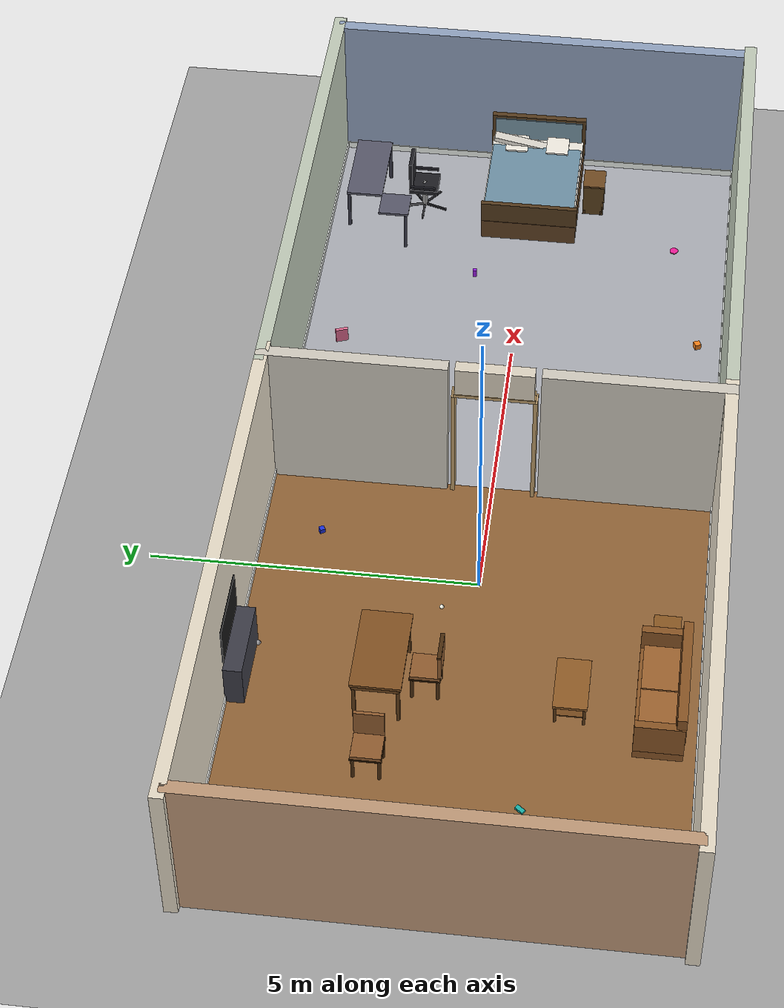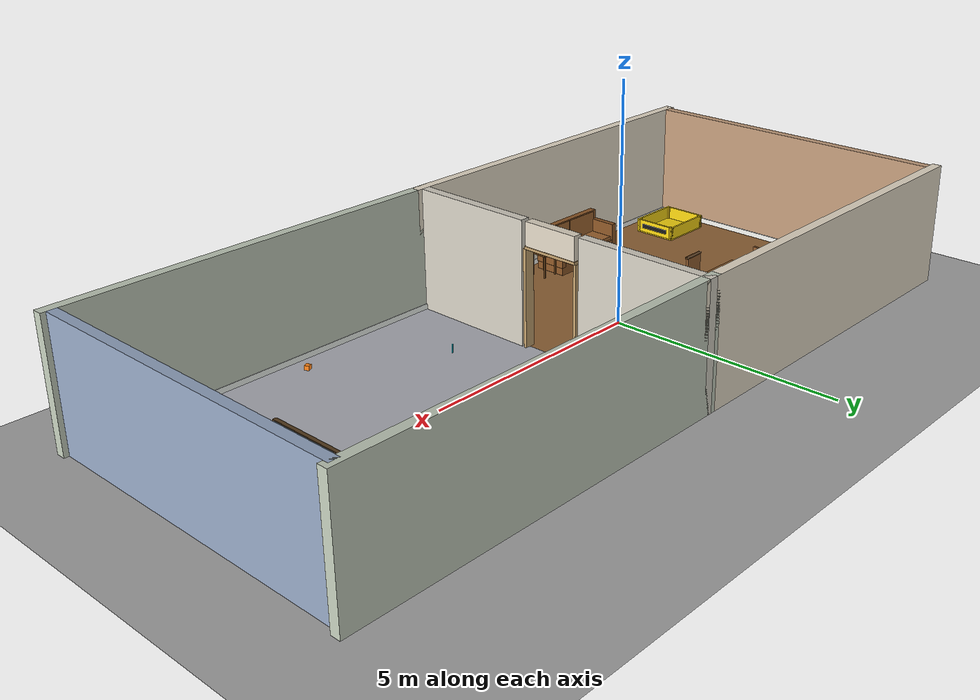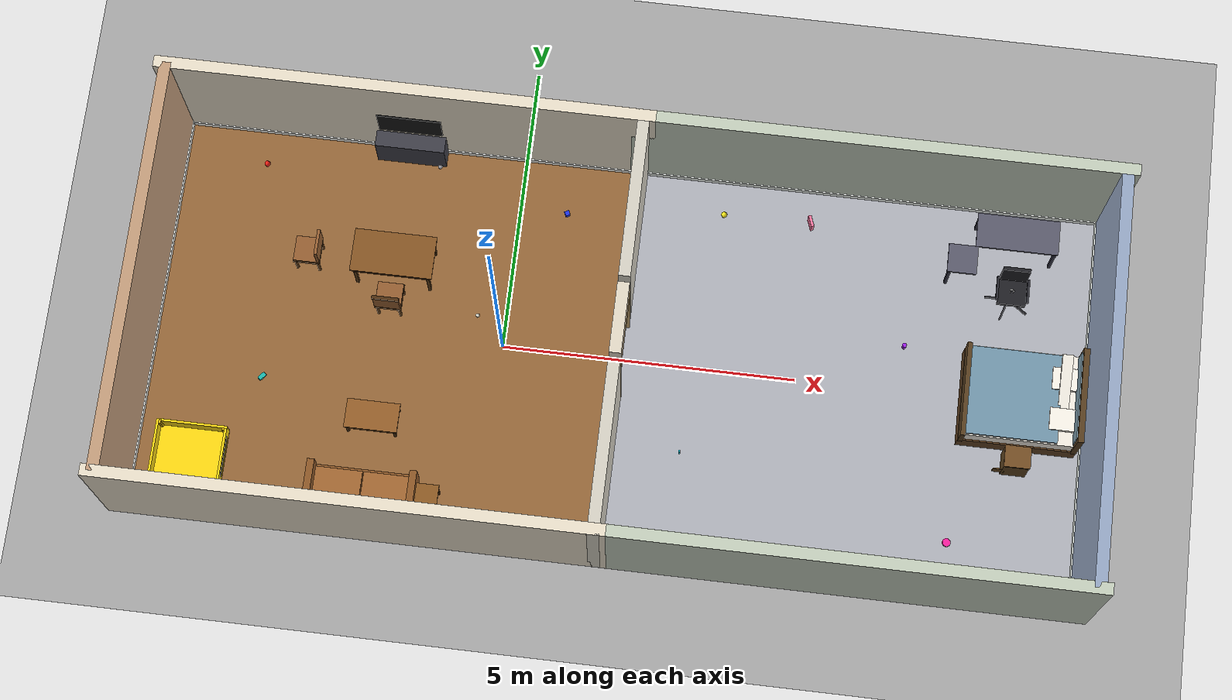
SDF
<?xml version="1.0" ?>
<sdf version="1.8">
  <world name="home_world">

    <!-- ==================== PHYSICS ==================== -->
    <gravity>0 0 -9.81</gravity>
    <magnetic_field>6e-06 2.3e-05 -4.2e-05</magnetic_field>

    <physics name="default_physics" type="ode">
      <max_step_size>0.001</max_step_size>
      <real_time_factor>1.0</real_time_factor>
      <real_time_update_rate>1000</real_time_update_rate>
      <ode>
        <solver>
          <type>quick</type>
          <iters>50</iters>
          <sor>1.3</sor>
          <use_dynamic_moi_rescaling>true</use_dynamic_moi_rescaling>
        </solver>
        <constraints>
          <cfm>0</cfm>
          <erp>0.2</erp>
          <contact_max_correcting_vel>100</contact_max_correcting_vel>
          <contact_surface_layer>0.001</contact_surface_layer>
        </constraints>
      </ode>
    </physics>

    <!-- ==================== SCENE ==================== -->
    <scene>
      <ambient>0.35 0.35 0.35 1</ambient>
      <background>0.65 0.65 0.68 1</background>
      <shadows>true</shadows>
      <grid>false</grid>
      <origin_visual>false</origin_visual>
    </scene>

    <!-- ==================== LIGHTING ==================== -->
    <!-- Room 1 = WARM (amber/orange tones). Room 2 = COOL (blue/slate tones). -->

    <light type="directional" name="sun">
      <cast_shadows>true</cast_shadows>
      <pose>0 0 10 0 0 0</pose>
      <diffuse>0.85 0.82 0.75 1</diffuse>
      <specular>0.30 0.28 0.25 1</specular>
      <direction>-0.5 0.1 -0.9</direction>
    </light>

    <!-- WARM overhead — Room 1 -->
    <light type="point" name="room1_overhead">
      <pose>-2 0 2.4 0 0 0</pose>
      <diffuse>0.55 0.48 0.38 1</diffuse>
      <specular>0.18 0.15 0.10 1</specular>
      <attenuation><range>15</range><constant>0.4</constant><linear>0.02</linear><quadratic>0.002</quadratic></attenuation>
      <cast_shadows>false</cast_shadows>
    </light>

    <!-- WARM accent — beside sofa, Room 1 -->
    <light type="point" name="room1_accent">
      <pose>-0.95 -2.84 1.85 0 0 0</pose>
      <diffuse>0.65 0.50 0.30 1</diffuse>
      <specular>0.20 0.15 0.08 1</specular>
      <attenuation><range>6</range><constant>0.5</constant><linear>0.08</linear><quadratic>0.02</quadratic></attenuation>
      <cast_shadows>false</cast_shadows>
    </light>

    <!-- COOL overhead — Room 2 -->
    <light type="point" name="room2_overhead">
      <pose>6 0 2.4 0 0 0</pose>
      <diffuse>0.40 0.45 0.55 1</diffuse>
      <specular>0.12 0.14 0.18 1</specular>
      <attenuation><range>15</range><constant>0.4</constant><linear>0.02</linear><quadratic>0.002</quadratic></attenuation>
      <cast_shadows>false</cast_shadows>
    </light>

    <!-- COOL accent — beside bed, Room 2 -->
    <light type="point" name="room2_accent">
      <pose>9.55 1.55 1.85 0 0 0</pose>
      <diffuse>0.42 0.48 0.60 1</diffuse>
      <specular>0.14 0.16 0.20 1</specular>
      <attenuation><range>5</range><constant>0.5</constant><linear>0.10</linear><quadratic>0.025</quadratic></attenuation>
      <cast_shadows>false</cast_shadows>
    </light>

    <!-- WARM bedside — Room 2 (warm contrast against cool room tone) -->
    <light type="point" name="room2_bedside">
      <pose>8.8 -1.05 1.0 0 0 0</pose>
      <diffuse>0.68 0.52 0.30 1</diffuse>
      <specular>0.20 0.15 0.08 1</specular>
      <attenuation><range>4</range><constant>0.5</constant><linear>0.12</linear><quadratic>0.04</quadratic></attenuation>
      <cast_shadows>false</cast_shadows>
    </light>

    <!-- ==================== PLUGINS ==================== -->
    <plugin filename="libgazebo_ros_state.so" name="gazebo_ros_state"/>
    <plugin name="gazebo_link_attacher" filename="libgazebo_link_attacher.so"/>

    <!-- ==================== GROUND PLANE ==================== -->
    <model name="ground_plane">
      <static>true</static>
      <link name="link">
        <collision name="col">
          <geometry><plane><normal>0 0 1</normal><size>60 60</size></plane></geometry>
          <surface><friction><ode><mu>0.8</mu><mu2>0.8</mu2></ode></friction><contact><ode><min_depth>0.001</min_depth></ode></contact></surface>
        </collision>
        <visual name="vis">
          <geometry><plane><normal>0 0 1</normal><size>60 60</size></plane></geometry>
          <material><ambient>0.55 0.55 0.55 1</ambient><diffuse>0.65 0.65 0.65 1</diffuse><specular>0.08 0.08 0.08 1</specular></material>
        </visual>
      </link>
    </model>

    <!-- ==================== FLOOR TILES ==================== -->

    <!-- Room 1 — warm oak hardwood -->
    <model name="room1_floor">
      <static>true</static><pose>-2 0 0.001 0 0 0</pose>
      <link name="link">
        <visual name="vis">
          <geometry><box><size>8 7 0.002</size></box></geometry>
          <material><ambient>0.38 0.26 0.14 1</ambient><diffuse>0.58 0.40 0.22 1</diffuse><specular>0.22 0.16 0.09 1</specular><emissive>0.010 0.008 0.004 1</emissive></material>
        </visual>
      </link>
    </model>

    <!-- Room 2 — cool polished concrete -->
    <model name="room2_floor">
      <static>true</static><pose>6 0 0.001 0 0 0</pose>
      <link name="link">
        <visual name="vis">
          <geometry><box><size>8 7 0.002</size></box></geometry>
          <material><ambient>0.52 0.53 0.56 1</ambient><diffuse>0.68 0.69 0.72 1</diffuse><specular>0.30 0.30 0.32 1</specular><emissive>0.005 0.005 0.006 1</emissive></material>
        </visual>
      </link>
    </model>

    <!-- ==================== ROOM 1 WALLS ==================== -->
    <!-- Room 1: 8×7 m, centre (−2,0), x=[−6,2], y=[−3.5,3.5], h=2.6 m -->

    <model name="room1_wall_south">
      <static>true</static><pose>-2 -3.5 1.3 0 0 0</pose>
      <link name="link">
        <collision name="col"><geometry><box><size>8.4 0.2 2.6</size></box></geometry><surface><friction><ode><mu>0.6</mu><mu2>0.6</mu2></ode></friction></surface></collision>
        <visual name="vis"><geometry><box><size>8.4 0.2 2.6</size></box></geometry>
          <material><ambient>0.82 0.78 0.70 1</ambient><diffuse>0.91 0.87 0.79 1</diffuse><specular>0.04 0.04 0.03 1</specular><emissive>0.008 0.007 0.005 1</emissive></material></visual>
      </link>
    </model>

    <model name="room1_wall_north">
      <static>true</static><pose>-2 3.5 1.3 0 0 0</pose>
      <link name="link">
        <collision name="col"><geometry><box><size>8.4 0.2 2.6</size></box></geometry><surface><friction><ode><mu>0.6</mu><mu2>0.6</mu2></ode></friction></surface></collision>
        <visual name="vis"><geometry><box><size>8.4 0.2 2.6</size></box></geometry>
          <material><ambient>0.82 0.78 0.70 1</ambient><diffuse>0.91 0.87 0.79 1</diffuse><specular>0.04 0.04 0.03 1</specular><emissive>0.008 0.007 0.005 1</emissive></material></visual>
      </link>
    </model>

    <!-- West wall — terracotta accent -->
    <model name="room1_wall_west">
      <static>true</static><pose>-6 0 1.3 0 0 0</pose>
      <link name="link">
        <collision name="col"><geometry><box><size>0.2 7 2.6</size></box></geometry><surface><friction><ode><mu>0.6</mu><mu2>0.6</mu2></ode></friction></surface></collision>
        <visual name="vis"><geometry><box><size>0.2 7 2.6</size></box></geometry>
          <material><ambient>0.68 0.54 0.42 1</ambient><diffuse>0.76 0.61 0.48 1</diffuse><specular>0.04 0.03 0.02 1</specular><emissive>0.006 0.005 0.003 1</emissive></material></visual>
      </link>
    </model>

    <!-- Shared wall — doorway at y=0, 1.2 m wide -->
    <model name="shared_wall_south">
      <static>true</static><pose>2 -2.15 1.3 0 0 0</pose>
      <link name="link">
        <collision name="col"><geometry><box><size>0.2 2.9 2.6</size></box></geometry><surface><friction><ode><mu>0.6</mu><mu2>0.6</mu2></ode></friction></surface></collision>
        <visual name="vis"><geometry><box><size>0.2 2.9 2.6</size></box></geometry>
          <material><ambient>0.74 0.72 0.68 1</ambient><diffuse>0.83 0.81 0.76 1</diffuse><specular>0.05 0.05 0.04 1</specular></material></visual>
      </link>
    </model>

    <model name="shared_wall_north">
      <static>true</static><pose>2 2.15 1.3 0 0 0</pose>
      <link name="link">
        <collision name="col"><geometry><box><size>0.2 2.9 2.6</size></box></geometry><surface><friction><ode><mu>0.6</mu><mu2>0.6</mu2></ode></friction></surface></collision>
        <visual name="vis"><geometry><box><size>0.2 2.9 2.6</size></box></geometry>
          <material><ambient>0.74 0.72 0.68 1</ambient><diffuse>0.83 0.81 0.76 1</diffuse><specular>0.05 0.05 0.04 1</specular></material></visual>
      </link>
    </model>

    <model name="doorway_lintel">
      <static>true</static><pose>2 0 2.325 0 0 0</pose>
      <link name="link">
        <collision name="col"><geometry><box><size>0.2 1.2 0.55</size></box></geometry></collision>
        <visual name="vis"><geometry><box><size>0.2 1.2 0.55</size></box></geometry>
          <material><ambient>0.80 0.76 0.70 1</ambient><diffuse>0.88 0.84 0.77 1</diffuse><specular>0.04 0.04 0.03 1</specular></material></visual>
      </link>
    </model>

    <model name="door_frame_left">
      <static>true</static><pose>2 -0.62 1.025 0 0 0</pose>
      <link name="link">
        <visual name="vis"><geometry><box><size>0.22 0.06 2.05</size></box></geometry>
          <material><ambient>0.75 0.62 0.42 1</ambient><diffuse>0.75 0.62 0.42 1</diffuse><specular>0.12 0.10 0.07 1</specular></material></visual>
      </link>
    </model>

    <model name="door_frame_right">
      <static>true</static><pose>2 0.62 1.025 0 0 0</pose>
      <link name="link">
        <visual name="vis"><geometry><box><size>0.22 0.06 2.05</size></box></geometry>
          <material><ambient>0.75 0.62 0.42 1</ambient><diffuse>0.75 0.62 0.42 1</diffuse><specular>0.12 0.10 0.07 1</specular></material></visual>
      </link>
    </model>

    <model name="door_frame_top">
      <static>true</static><pose>2 0 2.075 0 0 0</pose>
      <link name="link">
        <visual name="vis"><geometry><box><size>0.22 1.24 0.06</size></box></geometry>
          <material><ambient>0.75 0.62 0.42 1</ambient><diffuse>0.75 0.62 0.42 1</diffuse><specular>0.12 0.10 0.07 1</specular></material></visual>
      </link>
    </model>

    <!-- ==================== ROOM 2 WALLS ==================== -->
    <!-- Room 2: 8×7 m, centre (6,0), x=[2,10], y=[−3.5,3.5], h=2.6 m -->

    <model name="room2_wall_south">
      <static>true</static><pose>6 -3.5 1.3 0 0 0</pose>
      <link name="link">
        <collision name="col"><geometry><box><size>8.4 0.2 2.6</size></box></geometry><surface><friction><ode><mu>0.6</mu><mu2>0.6</mu2></ode></friction></surface></collision>
        <visual name="vis"><geometry><box><size>8.4 0.2 2.6</size></box></geometry>
          <material><ambient>0.68 0.72 0.65 1</ambient><diffuse>0.76 0.80 0.73 1</diffuse><specular>0.04 0.04 0.03 1</specular><emissive>0.006 0.007 0.005 1</emissive></material></visual>
      </link>
    </model>

    <model name="room2_wall_north">
      <static>true</static><pose>6 3.5 1.3 0 0 0</pose>
      <link name="link">
        <collision name="col"><geometry><box><size>8.4 0.2 2.6</size></box></geometry><surface><friction><ode><mu>0.6</mu><mu2>0.6</mu2></ode></friction></surface></collision>
        <visual name="vis"><geometry><box><size>8.4 0.2 2.6</size></box></geometry>
          <material><ambient>0.68 0.72 0.65 1</ambient><diffuse>0.76 0.80 0.73 1</diffuse><specular>0.04 0.04 0.03 1</specular><emissive>0.006 0.007 0.005 1</emissive></material></visual>
      </link>
    </model>

    <!-- East wall — dusty slate-blue accent -->
    <model name="room2_wall_east">
      <static>true</static><pose>10 0 1.3 0 0 0</pose>
      <link name="link">
        <collision name="col"><geometry><box><size>0.2 7 2.6</size></box></geometry><surface><friction><ode><mu>0.6</mu><mu2>0.6</mu2></ode></friction></surface></collision>
        <visual name="vis"><geometry><box><size>0.2 7 2.6</size></box></geometry>
          <material><ambient>0.52 0.58 0.68 1</ambient><diffuse>0.58 0.65 0.76 1</diffuse><specular>0.04 0.04 0.05 1</specular><emissive>0.005 0.006 0.008 1</emissive></material></visual>
      </link>
    </model>

    <!-- ==================== BASEBOARDS ==================== -->

    <model name="r1_base_south"><static>true</static><pose>-2 -3.4 0.06 0 0 0</pose><link name="link"><visual name="v"><geometry><box><size>7.8 0.04 0.12</size></box></geometry><material><ambient>0.92 0.92 0.90 1</ambient><diffuse>0.96 0.96 0.94 1</diffuse><specular>0.18 0.18 0.16 1</specular></material></visual></link></model>
    <model name="r1_base_north"><static>true</static><pose>-2 3.4 0.06 0 0 0</pose><link name="link"><visual name="v"><geometry><box><size>7.8 0.04 0.12</size></box></geometry><material><ambient>0.92 0.92 0.90 1</ambient><diffuse>0.96 0.96 0.94 1</diffuse><specular>0.18 0.18 0.16 1</specular></material></visual></link></model>
    <model name="r1_base_west"><static>true</static><pose>-5.9 0 0.06 0 0 0</pose><link name="link"><visual name="v"><geometry><box><size>0.04 6.8 0.12</size></box></geometry><material><ambient>0.92 0.92 0.90 1</ambient><diffuse>0.96 0.96 0.94 1</diffuse><specular>0.18 0.18 0.16 1</specular></material></visual></link></model>
    <model name="r2_base_south"><static>true</static><pose>6 -3.4 0.06 0 0 0</pose><link name="link"><visual name="v"><geometry><box><size>7.8 0.04 0.12</size></box></geometry><material><ambient>0.90 0.92 0.90 1</ambient><diffuse>0.94 0.96 0.94 1</diffuse><specular>0.18 0.18 0.18 1</specular></material></visual></link></model>
    <model name="r2_base_north"><static>true</static><pose>6 3.4 0.06 0 0 0</pose><link name="link"><visual name="v"><geometry><box><size>7.8 0.04 0.12</size></box></geometry><material><ambient>0.90 0.92 0.90 1</ambient><diffuse>0.94 0.96 0.94 1</diffuse><specular>0.18 0.18 0.18 1</specular></material></visual></link></model>
    <model name="r2_base_east"><static>true</static><pose>9.9 0 0.06 0 0 0</pose><link name="link"><visual name="v"><geometry><box><size>0.04 6.8 0.12</size></box></geometry><material><ambient>0.90 0.92 0.90 1</ambient><diffuse>0.94 0.96 0.94 1</diffuse><specular>0.18 0.18 0.18 1</specular></material></visual></link></model>

    <!-- ==================== ROOM 1 FURNITURE ==================== -->

    <!-- Dining table — centre (−2, 1.2) -->
    <model name="room1_table">
      <static>true</static><pose>-2 1.2 0 0 0 0</pose>
      <link name="link">
        <collision name="top_col"><pose>0 0 0.76 0 0 0</pose><geometry><box><size>1.4 0.75 0.04</size></box></geometry></collision>
        <visual name="top_vis"><pose>0 0 0.76 0 0 0</pose><geometry><box><size>1.4 0.75 0.04</size></box></geometry><material><ambient>0.48 0.30 0.12 1</ambient><diffuse>0.52 0.33 0.14 1</diffuse><specular>0.15 0.10 0.06 1</specular></material></visual>
        <visual name="apron_f"><pose>0 -0.345 0.695 0 0 0</pose><geometry><box><size>1.32 0.03 0.08</size></box></geometry><material><ambient>0.42 0.26 0.10 1</ambient><diffuse>0.42 0.26 0.10 1</diffuse></material></visual>
        <visual name="apron_b"><pose>0 0.345 0.695 0 0 0</pose><geometry><box><size>1.32 0.03 0.08</size></box></geometry><material><ambient>0.42 0.26 0.10 1</ambient><diffuse>0.42 0.26 0.10 1</diffuse></material></visual>
        <visual name="apron_l"><pose>-0.665 0 0.695 0 0 0</pose><geometry><box><size>0.03 0.69 0.08</size></box></geometry><material><ambient>0.42 0.26 0.10 1</ambient><diffuse>0.42 0.26 0.10 1</diffuse></material></visual>
        <visual name="apron_r"><pose>0.665 0 0.695 0 0 0</pose><geometry><box><size>0.03 0.69 0.08</size></box></geometry><material><ambient>0.42 0.26 0.10 1</ambient><diffuse>0.42 0.26 0.10 1</diffuse></material></visual>
        <collision name="leg_fl_col"><pose>-0.625 -0.32 0.365 0 0 0</pose><geometry><box><size>0.05 0.05 0.73</size></box></geometry></collision>
        <visual name="leg_fl_vis"><pose>-0.625 -0.32 0.365 0 0 0</pose><geometry><box><size>0.05 0.05 0.73</size></box></geometry><material><ambient>0.38 0.24 0.09 1</ambient><diffuse>0.38 0.24 0.09 1</diffuse></material></visual>
        <collision name="leg_fr_col"><pose>0.625 -0.32 0.365 0 0 0</pose><geometry><box><size>0.05 0.05 0.73</size></box></geometry></collision>
        <visual name="leg_fr_vis"><pose>0.625 -0.32 0.365 0 0 0</pose><geometry><box><size>0.05 0.05 0.73</size></box></geometry><material><ambient>0.38 0.24 0.09 1</ambient><diffuse>0.38 0.24 0.09 1</diffuse></material></visual>
        <collision name="leg_bl_col"><pose>-0.625 0.32 0.365 0 0 0</pose><geometry><box><size>0.05 0.05 0.73</size></box></geometry></collision>
        <visual name="leg_bl_vis"><pose>-0.625 0.32 0.365 0 0 0</pose><geometry><box><size>0.05 0.05 0.73</size></box></geometry><material><ambient>0.38 0.24 0.09 1</ambient><diffuse>0.38 0.24 0.09 1</diffuse></material></visual>
        <collision name="leg_br_col"><pose>0.625 0.32 0.365 0 0 0</pose><geometry><box><size>0.05 0.05 0.73</size></box></geometry></collision>
        <visual name="leg_br_vis"><pose>0.625 0.32 0.365 0 0 0</pose><geometry><box><size>0.05 0.05 0.73</size></box></geometry><material><ambient>0.38 0.24 0.09 1</ambient><diffuse>0.38 0.24 0.09 1</diffuse></material></visual>
      </link>
    </model>

    <!-- Chair 1 — south of table, facing north (+y) -->
    <model name="room1_chair1">
      <static>true</static><pose>-2 0.55 0 0 0 0</pose>
      <link name="link">
        <collision name="seat_col"><pose>0 0 0.46 0 0 0</pose><geometry><box><size>0.44 0.44 0.06</size></box></geometry></collision>
        <visual name="seat_vis"><pose>0 0 0.46 0 0 0</pose><geometry><box><size>0.44 0.44 0.06</size></box></geometry><material><ambient>0.55 0.35 0.18 1</ambient><diffuse>0.58 0.37 0.19 1</diffuse><specular>0.05 0.03 0.02 1</specular></material></visual>
        <visual name="seat_frame"><pose>0 0 0.415 0 0 0</pose><geometry><box><size>0.46 0.46 0.02</size></box></geometry><material><ambient>0.30 0.18 0.06 1</ambient><diffuse>0.30 0.18 0.06 1</diffuse></material></visual>
        <collision name="back_col"><pose>0 -0.21 0.73 0 0 0</pose><geometry><box><size>0.44 0.05 0.44</size></box></geometry></collision>
        <visual name="back_vis"><pose>0 -0.21 0.73 0 0 0</pose><geometry><box><size>0.44 0.05 0.44</size></box></geometry><material><ambient>0.55 0.35 0.18 1</ambient><diffuse>0.58 0.37 0.19 1</diffuse></material></visual>
        <visual name="back_rail"><pose>0 -0.21 0.96 0 0 0</pose><geometry><box><size>0.46 0.06 0.04</size></box></geometry><material><ambient>0.30 0.18 0.06 1</ambient><diffuse>0.30 0.18 0.06 1</diffuse></material></visual>
        <collision name="leg_fl_col"><pose>0.19 0.19 0.22 0 0 0</pose><geometry><cylinder><radius>0.025</radius><length>0.44</length></cylinder></geometry></collision>
        <visual name="leg_fl_vis"><pose>0.19 0.19 0.22 0 0 0</pose><geometry><cylinder><radius>0.025</radius><length>0.44</length></cylinder></geometry><material><ambient>0.30 0.18 0.06 1</ambient><diffuse>0.30 0.18 0.06 1</diffuse></material></visual>
        <collision name="leg_fr_col"><pose>0.19 -0.19 0.22 0 0 0</pose><geometry><cylinder><radius>0.025</radius><length>0.44</length></cylinder></geometry></collision>
        <visual name="leg_fr_vis"><pose>0.19 -0.19 0.22 0 0 0</pose><geometry><cylinder><radius>0.025</radius><length>0.44</length></cylinder></geometry><material><ambient>0.30 0.18 0.06 1</ambient><diffuse>0.30 0.18 0.06 1</diffuse></material></visual>
        <collision name="leg_bl_col"><pose>-0.19 0.19 0.22 0 0 0</pose><geometry><cylinder><radius>0.025</radius><length>0.44</length></cylinder></geometry></collision>
        <visual name="leg_bl_vis"><pose>-0.19 0.19 0.22 0 0 0</pose><geometry><cylinder><radius>0.025</radius><length>0.44</length></cylinder></geometry><material><ambient>0.30 0.18 0.06 1</ambient><diffuse>0.30 0.18 0.06 1</diffuse></material></visual>
        <collision name="leg_br_col"><pose>-0.19 -0.19 0.22 0 0 0</pose><geometry><cylinder><radius>0.025</radius><length>0.44</length></cylinder></geometry></collision>
        <visual name="leg_br_vis"><pose>-0.19 -0.19 0.22 0 0 0</pose><geometry><cylinder><radius>0.025</radius><length>0.44</length></cylinder></geometry><material><ambient>0.30 0.18 0.06 1</ambient><diffuse>0.30 0.18 0.06 1</diffuse></material></visual>
      </link>
    </model>

    <!-- Chair 2 — west of table, facing east (+x) -->
    <model name="room1_chair2">
      <static>true</static><pose>-3.5 1.2 0 0 0 1.5708</pose>
      <link name="link">
        <collision name="seat_col"><pose>0 0 0.46 0 0 0</pose><geometry><box><size>0.44 0.44 0.06</size></box></geometry></collision>
        <visual name="seat_vis"><pose>0 0 0.46 0 0 0</pose><geometry><box><size>0.44 0.44 0.06</size></box></geometry><material><ambient>0.55 0.35 0.18 1</ambient><diffuse>0.58 0.37 0.19 1</diffuse></material></visual>
        <visual name="seat_frame"><pose>0 0 0.415 0 0 0</pose><geometry><box><size>0.46 0.46 0.02</size></box></geometry><material><ambient>0.30 0.18 0.06 1</ambient><diffuse>0.30 0.18 0.06 1</diffuse></material></visual>
        <collision name="back_col"><pose>0 -0.21 0.73 0 0 0</pose><geometry><box><size>0.44 0.05 0.44</size></box></geometry></collision>
        <visual name="back_vis"><pose>0 -0.21 0.73 0 0 0</pose><geometry><box><size>0.44 0.05 0.44</size></box></geometry><material><ambient>0.55 0.35 0.18 1</ambient><diffuse>0.58 0.37 0.19 1</diffuse></material></visual>
        <collision name="leg_fl_col"><pose>0.19 0.19 0.22 0 0 0</pose><geometry><cylinder><radius>0.025</radius><length>0.44</length></cylinder></geometry></collision>
        <visual name="leg_fl_vis"><pose>0.19 0.19 0.22 0 0 0</pose><geometry><cylinder><radius>0.025</radius><length>0.44</length></cylinder></geometry><material><ambient>0.30 0.18 0.06 1</ambient><diffuse>0.30 0.18 0.06 1</diffuse></material></visual>
        <collision name="leg_fr_col"><pose>0.19 -0.19 0.22 0 0 0</pose><geometry><cylinder><radius>0.025</radius><length>0.44</length></cylinder></geometry></collision>
        <visual name="leg_fr_vis"><pose>0.19 -0.19 0.22 0 0 0</pose><geometry><cylinder><radius>0.025</radius><length>0.44</length></cylinder></geometry><material><ambient>0.30 0.18 0.06 1</ambient><diffuse>0.30 0.18 0.06 1</diffuse></material></visual>
        <collision name="leg_bl_col"><pose>-0.19 0.19 0.22 0 0 0</pose><geometry><cylinder><radius>0.025</radius><length>0.44</length></cylinder></geometry></collision>
        <visual name="leg_bl_vis"><pose>-0.19 0.19 0.22 0 0 0</pose><geometry><cylinder><radius>0.025</radius><length>0.44</length></cylinder></geometry><material><ambient>0.30 0.18 0.06 1</ambient><diffuse>0.30 0.18 0.06 1</diffuse></material></visual>
        <collision name="leg_br_col"><pose>-0.19 -0.19 0.22 0 0 0</pose><geometry><cylinder><radius>0.025</radius><length>0.44</length></cylinder></geometry></collision>
        <visual name="leg_br_vis"><pose>-0.19 -0.19 0.22 0 0 0</pose><geometry><cylinder><radius>0.025</radius><length>0.44</length></cylinder></geometry><material><ambient>0.30 0.18 0.06 1</ambient><diffuse>0.30 0.18 0.06 1</diffuse></material></visual>
      </link>
    </model>

    <!-- Sofa — back against south wall, facing north -->
    <model name="room1_sofa">
      <static>true</static><pose>-2 -2.84 0 0 0 0</pose>
      <link name="link">
        <collision name="frame_col"><pose>0 0 0.18 0 0 0</pose><geometry><box><size>1.8 0.72 0.36</size></box></geometry></collision>
        <visual name="frame_vis"><pose>0 0 0.18 0 0 0</pose><geometry><box><size>1.8 0.72 0.36</size></box></geometry><material><ambient>0.52 0.32 0.14 1</ambient><diffuse>0.55 0.34 0.15 1</diffuse></material></visual>
        <visual name="cushion_l"><pose>-0.42 0 0.38 0 0 0</pose><geometry><box><size>0.82 0.62 0.10</size></box></geometry><material><ambient>0.60 0.38 0.18 1</ambient><diffuse>0.63 0.40 0.19 1</diffuse></material></visual>
        <visual name="cushion_r"><pose>0.42 0 0.38 0 0 0</pose><geometry><box><size>0.82 0.62 0.10</size></box></geometry><material><ambient>0.60 0.38 0.18 1</ambient><diffuse>0.63 0.40 0.19 1</diffuse></material></visual>
        <collision name="back_col"><pose>0 -0.30 0.65 0 0 0</pose><geometry><box><size>1.8 0.14 0.55</size></box></geometry></collision>
        <visual name="back_vis"><pose>0 -0.30 0.65 0 0 0</pose><geometry><box><size>1.8 0.14 0.55</size></box></geometry><material><ambient>0.52 0.32 0.14 1</ambient><diffuse>0.55 0.34 0.15 1</diffuse></material></visual>
        <visual name="bcushion_l"><pose>-0.42 -0.26 0.66 0 0 0</pose><geometry><box><size>0.82 0.08 0.48</size></box></geometry><material><ambient>0.60 0.38 0.18 1</ambient><diffuse>0.63 0.40 0.19 1</diffuse></material></visual>
        <visual name="bcushion_r"><pose>0.42 -0.26 0.66 0 0 0</pose><geometry><box><size>0.82 0.08 0.48</size></box></geometry><material><ambient>0.60 0.38 0.18 1</ambient><diffuse>0.63 0.40 0.19 1</diffuse></material></visual>
        <collision name="arm_l_col"><pose>-0.86 0 0.45 0 0 0</pose><geometry><box><size>0.12 0.72 0.55</size></box></geometry></collision>
        <visual name="arm_l_vis"><pose>-0.86 0 0.45 0 0 0</pose><geometry><box><size>0.12 0.72 0.55</size></box></geometry><material><ambient>0.52 0.32 0.14 1</ambient><diffuse>0.55 0.34 0.15 1</diffuse></material></visual>
        <collision name="arm_r_col"><pose>0.86 0 0.45 0 0 0</pose><geometry><box><size>0.12 0.72 0.55</size></box></geometry></collision>
        <visual name="arm_r_vis"><pose>0.86 0 0.45 0 0 0</pose><geometry><box><size>0.12 0.72 0.55</size></box></geometry><material><ambient>0.52 0.32 0.14 1</ambient><diffuse>0.55 0.34 0.15 1</diffuse></material></visual>
        <visual name="leg_fl"><pose>-0.78 0.30 0.04 0 0 0</pose><geometry><box><size>0.06 0.06 0.08</size></box></geometry><material><ambient>0.28 0.18 0.07 1</ambient><diffuse>0.28 0.18 0.07 1</diffuse></material></visual>
        <visual name="leg_fr"><pose>0.78 0.30 0.04 0 0 0</pose><geometry><box><size>0.06 0.06 0.08</size></box></geometry><material><ambient>0.28 0.18 0.07 1</ambient><diffuse>0.28 0.18 0.07 1</diffuse></material></visual>
        <visual name="leg_bl"><pose>-0.78 -0.30 0.04 0 0 0</pose><geometry><box><size>0.06 0.06 0.08</size></box></geometry><material><ambient>0.28 0.18 0.07 1</ambient><diffuse>0.28 0.18 0.07 1</diffuse></material></visual>
        <visual name="leg_br"><pose>0.78 -0.30 0.04 0 0 0</pose><geometry><box><size>0.06 0.06 0.08</size></box></geometry><material><ambient>0.28 0.18 0.07 1</ambient><diffuse>0.28 0.18 0.07 1</diffuse></material></visual>
      </link>
    </model>

    <!-- Coffee table — in front of sofa -->
    <model name="room1_coffee_table">
      <static>true</static><pose>-2 -1.55 0 0 0 0</pose>
      <link name="link">
        <collision name="top_col"><pose>0 0 0.38 0 0 0</pose><geometry><box><size>0.9 0.5 0.04</size></box></geometry></collision>
        <visual name="top_vis"><pose>0 0 0.38 0 0 0</pose><geometry><box><size>0.9 0.5 0.04</size></box></geometry><material><ambient>0.55 0.35 0.15 1</ambient><diffuse>0.58 0.37 0.16 1</diffuse><specular>0.12 0.08 0.04 1</specular></material></visual>
        <collision name="shelf_col"><pose>0 0 0.16 0 0 0</pose><geometry><box><size>0.82 0.42 0.02</size></box></geometry></collision>
        <visual name="shelf_vis"><pose>0 0 0.16 0 0 0</pose><geometry><box><size>0.82 0.42 0.02</size></box></geometry><material><ambient>0.48 0.30 0.12 1</ambient><diffuse>0.48 0.30 0.12 1</diffuse></material></visual>
        <collision name="leg_fl_col"><pose>0.40 -0.21 0.19 0 0 0</pose><geometry><box><size>0.04 0.04 0.38</size></box></geometry></collision>
        <visual name="leg_fl_vis"><pose>0.40 -0.21 0.19 0 0 0</pose><geometry><box><size>0.04 0.04 0.38</size></box></geometry><material><ambient>0.35 0.22 0.08 1</ambient><diffuse>0.35 0.22 0.08 1</diffuse></material></visual>
        <collision name="leg_fr_col"><pose>0.40 0.21 0.19 0 0 0</pose><geometry><box><size>0.04 0.04 0.38</size></box></geometry></collision>
        <visual name="leg_fr_vis"><pose>0.40 0.21 0.19 0 0 0</pose><geometry><box><size>0.04 0.04 0.38</size></box></geometry><material><ambient>0.35 0.22 0.08 1</ambient><diffuse>0.35 0.22 0.08 1</diffuse></material></visual>
        <collision name="leg_bl_col"><pose>-0.40 -0.21 0.19 0 0 0</pose><geometry><box><size>0.04 0.04 0.38</size></box></geometry></collision>
        <visual name="leg_bl_vis"><pose>-0.40 -0.21 0.19 0 0 0</pose><geometry><box><size>0.04 0.04 0.38</size></box></geometry><material><ambient>0.35 0.22 0.08 1</ambient><diffuse>0.35 0.22 0.08 1</diffuse></material></visual>
        <collision name="leg_br_col"><pose>-0.40 0.21 0.19 0 0 0</pose><geometry><box><size>0.04 0.04 0.38</size></box></geometry></collision>
        <visual name="leg_br_vis"><pose>-0.40 0.21 0.19 0 0 0</pose><geometry><box><size>0.04 0.04 0.38</size></box></geometry><material><ambient>0.35 0.22 0.08 1</ambient><diffuse>0.35 0.22 0.08 1</diffuse></material></visual>
      </link>
    </model>

    <!-- Sofa side table — right of sofa right arm -->
    <model name="room1_side_table">
      <static>true</static><pose>-0.9 -2.84 0 0 0 0</pose>
      <link name="link">
        <collision name="top_col"><pose>0 0 0.52 0 0 0</pose><geometry><box><size>0.40 0.40 0.03</size></box></geometry></collision>
        <visual name="top_vis"><pose>0 0 0.52 0 0 0</pose><geometry><box><size>0.40 0.40 0.03</size></box></geometry><material><ambient>0.48 0.30 0.12 1</ambient><diffuse>0.55 0.35 0.14 1</diffuse><specular>0.18 0.11 0.05 1</specular></material></visual>
        <collision name="leg_fl_col"><pose>0.17 -0.17 0.26 0 0 0</pose><geometry><box><size>0.03 0.03 0.52</size></box></geometry></collision>
        <visual name="leg_fl_vis"><pose>0.17 -0.17 0.26 0 0 0</pose><geometry><box><size>0.03 0.03 0.52</size></box></geometry><material><ambient>0.35 0.22 0.08 1</ambient><diffuse>0.40 0.25 0.09 1</diffuse></material></visual>
        <collision name="leg_fr_col"><pose>0.17 0.17 0.26 0 0 0</pose><geometry><box><size>0.03 0.03 0.52</size></box></geometry></collision>
        <visual name="leg_fr_vis"><pose>0.17 0.17 0.26 0 0 0</pose><geometry><box><size>0.03 0.03 0.52</size></box></geometry><material><ambient>0.35 0.22 0.08 1</ambient><diffuse>0.40 0.25 0.09 1</diffuse></material></visual>
        <collision name="leg_bl_col"><pose>-0.17 -0.17 0.26 0 0 0</pose><geometry><box><size>0.03 0.03 0.52</size></box></geometry></collision>
        <visual name="leg_bl_vis"><pose>-0.17 -0.17 0.26 0 0 0</pose><geometry><box><size>0.03 0.03 0.52</size></box></geometry><material><ambient>0.35 0.22 0.08 1</ambient><diffuse>0.40 0.25 0.09 1</diffuse></material></visual>
        <collision name="leg_br_col"><pose>-0.17 0.17 0.26 0 0 0</pose><geometry><box><size>0.03 0.03 0.52</size></box></geometry></collision>
        <visual name="leg_br_vis"><pose>-0.17 0.17 0.26 0 0 0</pose><geometry><box><size>0.03 0.03 0.52</size></box></geometry><material><ambient>0.35 0.22 0.08 1</ambient><diffuse>0.40 0.25 0.09 1</diffuse></material></visual>
      </link>
    </model>

    <!-- TV cabinet — against north wall, screen facing south toward sofa -->
    <model name="room1_tv_cabinet">
      <static>true</static><pose>-2 3.31 0 0 0 3.14159</pose>
      <link name="link">
        <collision name="body_col"><pose>0 0 0.36 0 0 0</pose><geometry><box><size>1.2 0.38 0.72</size></box></geometry></collision>
        <visual name="body_vis"><pose>0 0 0.36 0 0 0</pose><geometry><box><size>1.2 0.38 0.72</size></box></geometry><material><ambient>0.22 0.22 0.26 1</ambient><diffuse>0.24 0.24 0.28 1</diffuse><specular>0.10 0.10 0.12 1</specular></material></visual>
        <visual name="divider"><pose>0 0 0.36 0 0 0</pose><geometry><box><size>1.18 0.36 0.02</size></box></geometry><material><ambient>0.30 0.30 0.35 1</ambient><diffuse>0.30 0.30 0.35 1</diffuse></material></visual>
        <collision name="tv_col"><pose>0 -0.10 1.15 0 0 0</pose><geometry><box><size>1.1 0.06 0.64</size></box></geometry></collision>
        <visual name="tv_vis"><pose>0 -0.10 1.15 0 0 0</pose><geometry><box><size>1.1 0.06 0.64</size></box></geometry><material><ambient>0.08 0.08 0.08 1</ambient><diffuse>0.08 0.08 0.08 1</diffuse><specular>0.30 0.30 0.30 1</specular></material></visual>
        <visual name="screen_vis"><pose>0 -0.13 1.15 0 0 0</pose><geometry><box><size>1.02 0.01 0.58</size></box></geometry><material><ambient>0.02 0.02 0.06 1</ambient><diffuse>0.03 0.03 0.08 1</diffuse><specular>0.50 0.50 0.50 1</specular></material></visual>
      </link>
    </model>

    <!-- ==================== ROOM 2 FURNITURE ==================== -->

    <!-- Study desk — L-shape, NE corner (8.5, 2.8) -->
    <model name="room2_desk">
      <static>true</static><pose>8.5 2.8 0 0 0 0</pose>
      <link name="link">
        <collision name="main_top_col"><pose>0 0 0.74 0 0 0</pose><geometry><box><size>1.4 0.6 0.04</size></box></geometry></collision>
        <visual name="main_top_vis"><pose>0 0 0.74 0 0 0</pose><geometry><box><size>1.4 0.6 0.04</size></box></geometry><material><ambient>0.32 0.32 0.38 1</ambient><diffuse>0.35 0.35 0.42 1</diffuse><specular>0.20 0.20 0.22 1</specular></material></visual>
        <collision name="side_top_col"><pose>-0.9 -0.55 0.74 0 0 0</pose><geometry><box><size>0.5 0.5 0.04</size></box></geometry></collision>
        <visual name="side_top_vis"><pose>-0.9 -0.55 0.74 0 0 0</pose><geometry><box><size>0.5 0.5 0.04</size></box></geometry><material><ambient>0.32 0.32 0.38 1</ambient><diffuse>0.35 0.35 0.42 1</diffuse><specular>0.20 0.20 0.22 1</specular></material></visual>
        <collision name="leg_fl_col"><pose>0.65 -0.27 0.365 0 0 0</pose><geometry><box><size>0.05 0.05 0.73</size></box></geometry></collision>
        <visual name="leg_fl_vis"><pose>0.65 -0.27 0.365 0 0 0</pose><geometry><box><size>0.05 0.05 0.73</size></box></geometry><material><ambient>0.22 0.22 0.28 1</ambient><diffuse>0.22 0.22 0.28 1</diffuse></material></visual>
        <collision name="leg_fr_col"><pose>0.65 0.27 0.365 0 0 0</pose><geometry><box><size>0.05 0.05 0.73</size></box></geometry></collision>
        <visual name="leg_fr_vis"><pose>0.65 0.27 0.365 0 0 0</pose><geometry><box><size>0.05 0.05 0.73</size></box></geometry><material><ambient>0.22 0.22 0.28 1</ambient><diffuse>0.22 0.22 0.28 1</diffuse></material></visual>
        <collision name="leg_bl_col"><pose>-0.65 0.27 0.365 0 0 0</pose><geometry><box><size>0.05 0.05 0.73</size></box></geometry></collision>
        <visual name="leg_bl_vis"><pose>-0.65 0.27 0.365 0 0 0</pose><geometry><box><size>0.05 0.05 0.73</size></box></geometry><material><ambient>0.22 0.22 0.28 1</ambient><diffuse>0.22 0.22 0.28 1</diffuse></material></visual>
        <collision name="leg_side_col"><pose>-1.1 -0.75 0.365 0 0 0</pose><geometry><box><size>0.05 0.05 0.73</size></box></geometry></collision>
        <visual name="leg_side_vis"><pose>-1.1 -0.75 0.365 0 0 0</pose><geometry><box><size>0.05 0.05 0.73</size></box></geometry><material><ambient>0.22 0.22 0.28 1</ambient><diffuse>0.22 0.22 0.28 1</diffuse></material></visual>
      </link>
    </model>

    <!-- Rolling chair — in front of desk, facing desk -->
    <model name="room2_rolling_chair">
      <static>true</static><pose>8.5 1.85 0 0 0 3.14159</pose>
      <link name="link">
        <collision name="seat_col"><pose>0 0 0.48 0 0 0</pose><geometry><box><size>0.48 0.48 0.08</size></box></geometry></collision>
        <visual name="seat_vis"><pose>0 0 0.48 0 0 0</pose><geometry><box><size>0.48 0.48 0.08</size></box></geometry><material><ambient>0.10 0.10 0.12 1</ambient><diffuse>0.12 0.12 0.14 1</diffuse><specular>0.10 0.10 0.12 1</specular></material></visual>
        <collision name="back_col"><pose>0 -0.22 0.78 0 0 0</pose><geometry><box><size>0.46 0.06 0.55</size></box></geometry></collision>
        <visual name="back_vis"><pose>0 -0.22 0.78 0 0 0</pose><geometry><box><size>0.46 0.06 0.55</size></box></geometry><material><ambient>0.10 0.10 0.12 1</ambient><diffuse>0.12 0.12 0.14 1</diffuse></material></visual>
        <visual name="arm_l"><pose>-0.26 0 0.60 0 0 0</pose><geometry><box><size>0.04 0.42 0.04</size></box></geometry><material><ambient>0.15 0.15 0.18 1</ambient><diffuse>0.15 0.15 0.18 1</diffuse></material></visual>
        <visual name="arm_r"><pose>0.26 0 0.60 0 0 0</pose><geometry><box><size>0.04 0.42 0.04</size></box></geometry><material><ambient>0.15 0.15 0.18 1</ambient><diffuse>0.15 0.15 0.18 1</diffuse></material></visual>
        <collision name="shaft_col"><pose>0 0 0.26 0 0 0</pose><geometry><cylinder><radius>0.04</radius><length>0.52</length></cylinder></geometry></collision>
        <visual name="shaft_vis"><pose>0 0 0.26 0 0 0</pose><geometry><cylinder><radius>0.04</radius><length>0.52</length></cylinder></geometry><material><ambient>0.55 0.55 0.55 1</ambient><diffuse>0.60 0.60 0.60 1</diffuse><specular>0.30 0.30 0.30 1</specular></material></visual>
        <visual name="spoke1"><pose>0.200 0     0.04 0 0 0     </pose><geometry><box><size>0.4 0.03 0.03</size></box></geometry><material><ambient>0.18 0.18 0.20 1</ambient><diffuse>0.18 0.18 0.20 1</diffuse></material></visual>
        <visual name="spoke2"><pose>0.062 0.190 0.04 0 0 1.2566</pose><geometry><box><size>0.4 0.03 0.03</size></box></geometry><material><ambient>0.18 0.18 0.20 1</ambient><diffuse>0.18 0.18 0.20 1</diffuse></material></visual>
        <visual name="spoke3"><pose>-0.162 0.118 0.04 0 0 2.5133</pose><geometry><box><size>0.4 0.03 0.03</size></box></geometry><material><ambient>0.18 0.18 0.20 1</ambient><diffuse>0.18 0.18 0.20 1</diffuse></material></visual>
        <visual name="spoke4"><pose>-0.162 -0.118 0.04 0 0 3.7699</pose><geometry><box><size>0.4 0.03 0.03</size></box></geometry><material><ambient>0.18 0.18 0.20 1</ambient><diffuse>0.18 0.18 0.20 1</diffuse></material></visual>
        <visual name="spoke5"><pose>0.062 -0.190 0.04 0 0 5.0265</pose><geometry><box><size>0.4 0.03 0.03</size></box></geometry><material><ambient>0.18 0.18 0.20 1</ambient><diffuse>0.18 0.18 0.20 1</diffuse></material></visual>
      </link>
    </model>

    <!-- Bed — double, headboard against east wall, centre (8.8, 0.0) -->
    <model name="room2_bed">
      <static>true</static><pose>8.8 0.0 0 0 0 0</pose>
      <link name="link">
        <collision name="base_col"><pose>0 0 0.18 0 0 0</pose><geometry><box><size>2.0 1.6 0.36</size></box></geometry></collision>
        <visual name="base_vis"><pose>0 0 0.18 0 0 0</pose><geometry><box><size>2.0 1.6 0.36</size></box></geometry><material><ambient>0.32 0.22 0.12 1</ambient><diffuse>0.38 0.26 0.14 1</diffuse><specular>0.14 0.10 0.06 1</specular></material></visual>
        <collision name="mattress_col"><pose>0 0 0.52 0 0 0</pose><geometry><box><size>1.96 1.56 0.28</size></box></geometry></collision>
        <visual name="mattress_vis"><pose>0 0 0.52 0 0 0</pose><geometry><box><size>1.96 1.56 0.28</size></box></geometry><material><ambient>0.90 0.88 0.84 1</ambient><diffuse>0.94 0.92 0.88 1</diffuse><specular>0.08 0.08 0.07 1</specular></material></visual>
        <visual name="duvet_vis"><pose>-0.15 0 0.67 0 0 0</pose><geometry><box><size>1.55 1.52 0.08</size></box></geometry><material><ambient>0.38 0.50 0.58 1</ambient><diffuse>0.44 0.58 0.66 1</diffuse><specular>0.06 0.08 0.09 1</specular></material></visual>
        <visual name="duvet_fold"><pose>0.68 0 0.69 0.2 0 0</pose><geometry><box><size>0.18 1.52 0.08</size></box></geometry><material><ambient>0.90 0.88 0.84 1</ambient><diffuse>0.94 0.92 0.88 1</diffuse></material></visual>
        <visual name="pillow_l"><pose>0.72 -0.35 0.69 0 0 0</pose><geometry><box><size>0.52 0.38 0.10</size></box></geometry><material><ambient>0.92 0.90 0.86 1</ambient><diffuse>0.96 0.94 0.90 1</diffuse></material></visual>
        <visual name="pillow_r"><pose>0.72 0.35 0.69 0 0 0</pose><geometry><box><size>0.52 0.38 0.10</size></box></geometry><material><ambient>0.92 0.90 0.86 1</ambient><diffuse>0.96 0.94 0.90 1</diffuse></material></visual>
        <collision name="headboard_col"><pose>0.95 0 0.72 0 0 0</pose><geometry><box><size>0.10 1.62 0.80</size></box></geometry></collision>
        <visual name="headboard_vis"><pose>0.95 0 0.72 0 0 0</pose><geometry><box><size>0.10 1.62 0.80</size></box></geometry><material><ambient>0.28 0.20 0.10 1</ambient><diffuse>0.34 0.24 0.12 1</diffuse><specular>0.18 0.13 0.07 1</specular></material></visual>
        <visual name="headboard_panel"><pose>0.90 0 0.72 0 0 0</pose><geometry><box><size>0.04 1.50 0.70</size></box></geometry><material><ambient>0.42 0.52 0.58 1</ambient><diffuse>0.48 0.60 0.66 1</diffuse></material></visual>
        <collision name="footboard_col"><pose>-0.95 0 0.52 0 0 0</pose><geometry><box><size>0.08 1.62 0.42</size></box></geometry></collision>
        <visual name="footboard_vis"><pose>-0.95 0 0.52 0 0 0</pose><geometry><box><size>0.08 1.62 0.42</size></box></geometry><material><ambient>0.28 0.20 0.10 1</ambient><diffuse>0.34 0.24 0.12 1</diffuse><specular>0.18 0.13 0.07 1</specular></material></visual>
        <visual name="leg_hl"><pose>0.94 -0.75 0.05 0 0 0</pose><geometry><box><size>0.06 0.06 0.10</size></box></geometry><material><ambient>0.24 0.16 0.08 1</ambient><diffuse>0.28 0.18 0.09 1</diffuse></material></visual>
        <visual name="leg_hr"><pose>0.94 0.75 0.05 0 0 0</pose><geometry><box><size>0.06 0.06 0.10</size></box></geometry><material><ambient>0.24 0.16 0.08 1</ambient><diffuse>0.28 0.18 0.09 1</diffuse></material></visual>
        <visual name="leg_fl"><pose>-0.94 -0.75 0.05 0 0 0</pose><geometry><box><size>0.06 0.06 0.10</size></box></geometry><material><ambient>0.24 0.16 0.08 1</ambient><diffuse>0.28 0.18 0.09 1</diffuse></material></visual>
        <visual name="leg_fr"><pose>-0.94 0.75 0.05 0 0 0</pose><geometry><box><size>0.06 0.06 0.10</size></box></geometry><material><ambient>0.24 0.16 0.08 1</ambient><diffuse>0.28 0.18 0.09 1</diffuse></material></visual>
      </link>
    </model>

    <!-- Bedside cabinet — left of bed -->
    <model name="room2_bedside_cabinet">
      <static>true</static><pose>8.8 -1.05 0 0 0 0</pose>
      <link name="link">
        <collision name="body_col"><pose>0 0 0.30 0 0 0</pose><geometry><box><size>0.42 0.35 0.60</size></box></geometry></collision>
        <visual name="body_vis"><pose>0 0 0.30 0 0 0</pose><geometry><box><size>0.42 0.35 0.60</size></box></geometry><material><ambient>0.30 0.22 0.10 1</ambient><diffuse>0.36 0.26 0.12 1</diffuse><specular>0.16 0.12 0.06 1</specular></material></visual>
        <collision name="top_col"><pose>0 0 0.615 0 0 0</pose><geometry><box><size>0.44 0.37 0.03</size></box></geometry></collision>
        <visual name="top_vis"><pose>0 0 0.615 0 0 0</pose><geometry><box><size>0.44 0.37 0.03</size></box></geometry><material><ambient>0.38 0.26 0.12 1</ambient><diffuse>0.45 0.30 0.14 1</diffuse><specular>0.22 0.15 0.07 1</specular></material></visual>
        <visual name="drawer_face"><pose>-0.17 -0.16 0.22 0 0 0</pose><geometry><box><size>0.38 0.02 0.18</size></box></geometry><material><ambient>0.34 0.24 0.11 1</ambient><diffuse>0.40 0.28 0.13 1</diffuse></material></visual>
        <visual name="drawer_handle"><pose>-0.17 -0.175 0.22 0 0 0</pose><geometry><cylinder><radius>0.008</radius><length>0.12</length></cylinder></geometry><material><ambient>0.60 0.48 0.20 1</ambient><diffuse>0.68 0.55 0.24 1</diffuse><specular>0.40 0.32 0.14 1</specular></material></visual>
        <visual name="leg_fl"><pose>0.19 -0.15 0.04 0 0 0</pose><geometry><box><size>0.04 0.04 0.08</size></box></geometry><material><ambient>0.24 0.16 0.07 1</ambient><diffuse>0.28 0.18 0.08 1</diffuse></material></visual>
        <visual name="leg_fr"><pose>0.19 0.15 0.04 0 0 0</pose><geometry><box><size>0.04 0.04 0.08</size></box></geometry><material><ambient>0.24 0.16 0.07 1</ambient><diffuse>0.28 0.18 0.08 1</diffuse></material></visual>
        <visual name="leg_bl"><pose>-0.19 -0.15 0.04 0 0 0</pose><geometry><box><size>0.04 0.04 0.08</size></box></geometry><material><ambient>0.24 0.16 0.07 1</ambient><diffuse>0.28 0.18 0.08 1</diffuse></material></visual>
        <visual name="leg_br"><pose>-0.19 0.15 0.04 0 0 0</pose><geometry><box><size>0.04 0.04 0.08</size></box></geometry><material><ambient>0.24 0.16 0.07 1</ambient><diffuse>0.28 0.18 0.08 1</diffuse></material></visual>
      </link>
    </model>

    <!-- ==================== COLLECTION BOX ==================== -->
    <model name="collection_box">
      <static>true</static>
      <pose>-5.0 -2.5 0 0 0 0</pose>
      <link name="link">

        <!-- ── Floor ── -->
        <collision name="floor_col">
          <pose>0 0 0.015 0 0 0</pose>
          <geometry><box><size>1.20 1.00 0.030</size></box></geometry>
        </collision>
        <visual name="floor_vis">
          <pose>0 0 0.015 0 0 0</pose>
          <geometry><box><size>1.20 1.00 0.030</size></box></geometry>
          <material>
            <ambient>0.95 0.80 0.05 1</ambient>
            <diffuse>0.98 0.84 0.06 1</diffuse>
            <specular>0.35 0.28 0.04 1</specular>
          </material>
        </visual>

        <!-- ── South wall (front, facing robot start) ── -->
        <collision name="wall_s_col">
          <pose>0 -0.48 0.17 0 0 0</pose>
          <geometry><box><size>1.20 0.04 0.28</size></box></geometry>
        </collision>
        <visual name="wall_s_vis">
          <pose>0 -0.48 0.17 0 0 0</pose>
          <geometry><box><size>1.20 0.04 0.28</size></box></geometry>
          <material>
            <ambient>0.95 0.80 0.05 1</ambient>
            <diffuse>0.98 0.84 0.06 1</diffuse>
            <specular>0.35 0.28 0.04 1</specular>
          </material>
        </visual>

        <!-- ── North wall (back) ── -->
        <collision name="wall_n_col">
          <pose>0 0.48 0.17 0 0 0</pose>
          <geometry><box><size>1.20 0.04 0.28</size></box></geometry>
        </collision>
        <visual name="wall_n_vis">
          <pose>0 0.48 0.17 0 0 0</pose>
          <geometry><box><size>1.20 0.04 0.28</size></box></geometry>
          <material>
            <ambient>0.95 0.80 0.05 1</ambient>
            <diffuse>0.98 0.84 0.06 1</diffuse>
            <specular>0.35 0.28 0.04 1</specular>
          </material>
        </visual>

        <!-- ── West wall (left) ── -->
        <collision name="wall_w_col">
          <pose>-0.58 0 0.17 0 0 0</pose>
          <geometry><box><size>0.04 1.00 0.28</size></box></geometry>
        </collision>
        <visual name="wall_w_vis">
          <pose>-0.58 0 0.17 0 0 0</pose>
          <geometry><box><size>0.04 1.00 0.28</size></box></geometry>
          <material>
            <ambient>0.95 0.80 0.05 1</ambient>
            <diffuse>0.98 0.84 0.06 1</diffuse>
            <specular>0.35 0.28 0.04 1</specular>
          </material>
        </visual>

        <!-- ── East wall (right) ── -->
        <collision name="wall_e_col">
          <pose>0.58 0 0.17 0 0 0</pose>
          <geometry><box><size>0.04 1.00 0.28</size></box></geometry>
        </collision>
        <visual name="wall_e_vis">
          <pose>0.58 0 0.17 0 0 0</pose>
          <geometry><box><size>0.04 1.00 0.28</size></box></geometry>
          <material>
            <ambient>0.95 0.80 0.05 1</ambient>
            <diffuse>0.98 0.84 0.06 1</diffuse>
            <specular>0.35 0.28 0.04 1</specular>
          </material>
        </visual>

        <!-- ── Bold black label band on east wall — faces into the room ── -->
        <visual name="label_band">
          <pose>0.602 0 0.17 0 0 0</pose>
          <geometry><box><size>0.005 0.70 0.10</size></box></geometry>
          <material>
            <ambient>0.05 0.05 0.05 1</ambient>
            <diffuse>0.08 0.08 0.08 1</diffuse>
            <specular>0.10 0.10 0.10 1</specular>
          </material>
        </visual>

        <!-- ── Corner cap reinforcements (visual only, adds solidity) ── -->
        <visual name="corner_sw">
          <pose>-0.56 -0.46 0.17 0 0 0</pose>
          <geometry><box><size>0.08 0.08 0.28</size></box></geometry>
          <material><ambient>0.80 0.65 0.04 1</ambient><diffuse>0.85 0.70 0.05 1</diffuse></material>
        </visual>
        <visual name="corner_se">
          <pose>0.56 -0.46 0.17 0 0 0</pose>
          <geometry><box><size>0.08 0.08 0.28</size></box></geometry>
          <material><ambient>0.80 0.65 0.04 1</ambient><diffuse>0.85 0.70 0.05 1</diffuse></material>
        </visual>
        <visual name="corner_nw">
          <pose>-0.56 0.46 0.17 0 0 0</pose>
          <geometry><box><size>0.08 0.08 0.28</size></box></geometry>
          <material><ambient>0.80 0.65 0.04 1</ambient><diffuse>0.85 0.70 0.05 1</diffuse></material>
        </visual>
        <visual name="corner_ne">
          <pose>0.56 0.46 0.17 0 0 0</pose>
          <geometry><box><size>0.08 0.08 0.28</size></box></geometry>
          <material><ambient>0.80 0.65 0.04 1</ambient><diffuse>0.85 0.70 0.05 1</diffuse></material>
        </visual>

      </link>
    </model>

    <!-- ==================== PICKUP OBJECTS ==================== -->

    <!-- 1. Red ball — NW corner Room 1, behind chair2 line (−4.5, 2.8)
         Represents: bouncy toy ball.  r=0.05 m=0.10  I=2/5*0.10*0.0025=0.0001 -->
    <model name="pickup_ball_red"><static>false</static>
      <pose>-4.5 2.8 0.05 0 0 0</pose>
      <link name="link">
        <inertial><mass>0.10</mass><inertia><ixx>0.0001</ixx><ixy>0</ixy><ixz>0</ixz><iyy>0.0001</iyy><iyz>0</iyz><izz>0.0001</izz></inertia></inertial>
        <collision name="col"><geometry><sphere><radius>0.05</radius></sphere></geometry>
          <surface><friction><ode><mu>0.60</mu><mu2>0.60</mu2></ode></friction><bounce><restitution_coefficient>0.65</restitution_coefficient><threshold>0.1</threshold></bounce></surface></collision>
        <visual name="vis"><geometry><sphere><radius>0.05</radius></sphere></geometry>
          <material><ambient>0.85 0.10 0.08 1</ambient><diffuse>0.92 0.12 0.08 1</diffuse><specular>0.40 0.10 0.10 1</specular></material></visual>
      </link>
    </model>

    <!-- 2. Blue cube — NE corner Room 1, near shared wall (0.8, 2.5)
         Represents: small wooden toy block.  0.08³ m=0.15  I=0.15*(0.08²+0.08²)/12=0.00016 -->
    <model name="pickup_cube_blue"><static>false</static>
      <pose>0.8 2.5 0.04 0 0 0.52</pose>
      <link name="link">
        <inertial><mass>0.15</mass><inertia><ixx>0.000160</ixx><ixy>0</ixy><ixz>0</ixz><iyy>0.000160</iyy><iyz>0</iyz><izz>0.000160</izz></inertia></inertial>
        <collision name="col"><geometry><box><size>0.08 0.08 0.08</size></box></geometry>
          <surface><friction><ode><mu>0.80</mu><mu2>0.80</mu2></ode></friction></surface></collision>
        <visual name="vis"><geometry><box><size>0.08 0.08 0.08</size></box></geometry>
          <material><ambient>0.10 0.18 0.82 1</ambient><diffuse>0.12 0.20 0.90 1</diffuse><specular>0.20 0.20 0.50 1</specular></material></visual>
      </link>
    </model>

    <model name="pickup_cylinder_green"><static>false</static>
      <pose>-4.5 -3.0 0.06 0 0 0</pose>
      <link name="link">
        <inertial><mass>0.14</mass><inertia><ixx>0.000224</ixx><ixy>0</ixy><ixz>0</ixz><iyy>0.000224</iyy><iyz>0</iyz><izz>0.000112</izz></inertia></inertial>
        <collision name="col"><geometry><cylinder><radius>0.04</radius><length>0.12</length></cylinder></geometry>
          <surface><friction><ode><mu>0.75</mu><mu2>0.75</mu2></ode></friction></surface></collision>
        <visual name="vis"><geometry><cylinder><radius>0.04</radius><length>0.12</length></cylinder></geometry>
          <material><ambient>0.08 0.72 0.12 1</ambient><diffuse>0.10 0.82 0.14 1</diffuse><specular>0.10 0.40 0.15 1</specular></material></visual>
      </link>
    </model>

    <!-- 4. White ball — mid-east corridor Room 1, between table & doorway (−0.5, 0.5)
         Represents: tennis ball.  r=0.033 m=0.058  I=2/5*0.058*0.001089=0.0000252 -->
    <model name="pickup_ball_white"><static>false</static>
      <pose>-0.5 0.5 0.033 0 0 0</pose>
      <link name="link">
        <inertial><mass>0.058</mass><inertia><ixx>0.0000252</ixx><ixy>0</ixy><ixz>0</ixz><iyy>0.0000252</iyy><iyz>0</iyz><izz>0.0000252</izz></inertia></inertial>
        <collision name="col"><geometry><sphere><radius>0.033</radius></sphere></geometry>
          <surface><friction><ode><mu>0.50</mu><mu2>0.50</mu2></ode></friction><bounce><restitution_coefficient>0.75</restitution_coefficient><threshold>0.05</threshold></bounce></surface></collision>
        <visual name="vis"><geometry><sphere><radius>0.033</radius></sphere></geometry>
          <material><ambient>0.92 0.92 0.88 1</ambient><diffuse>0.96 0.96 0.90 1</diffuse><specular>0.30 0.30 0.28 1</specular></material></visual>
      </link>
    </model>

    <model name="pickup_block_teal"><static>false</static>
      <pose>-4.0 -1.0 0.02 0 0 0.9</pose>
      <link name="link">
        <inertial><mass>0.22</mass><inertia><ixx>0.000119</ixx><ixy>0</ixy><ixz>0</ixz><iyy>0.000389</iyy><iyz>0</iyz><izz>0.000449</izz></inertia></inertial>
        <collision name="col"><geometry><box><size>0.14 0.07 0.04</size></box></geometry>
          <surface><friction><ode><mu>0.72</mu><mu2>0.72</mu2></ode></friction></surface></collision>
        <visual name="vis"><geometry><box><size>0.14 0.07 0.04</size></box></geometry>
          <material><ambient>0.08 0.62 0.60 1</ambient><diffuse>0.10 0.72 0.68 1</diffuse><specular>0.20 0.40 0.40 1</specular></material></visual>
      </link>
    </model>

    <!-- 6. Metal sphere — near north wall behind TV cabinet, Room 1 (−1.5, 3.1)
         Represents: heavy steel ball / door stopper.  r=0.04 m=0.50  I=2/5*0.50*0.0016=0.000320 -->
    <model name="pickup_ball_metal"><static>false</static>
      <pose>-1.5 3.1 0.04 0 0 0</pose>
      <link name="link">
        <inertial><mass>0.50</mass><inertia><ixx>0.000320</ixx><ixy>0</ixy><ixz>0</ixz><iyy>0.000320</iyy><iyz>0</iyz><izz>0.000320</izz></inertia></inertial>
        <collision name="col"><geometry><sphere><radius>0.04</radius></sphere></geometry>
          <surface><friction><ode><mu>0.35</mu><mu2>0.35</mu2></ode></friction><bounce><restitution_coefficient>0.25</restitution_coefficient><threshold>0.1</threshold></bounce></surface></collision>
        <visual name="vis"><geometry><sphere><radius>0.04</radius></sphere></geometry>
          <material><ambient>0.55 0.55 0.58 1</ambient><diffuse>0.62 0.62 0.64 1</diffuse><specular>0.72 0.72 0.74 1</specular></material></visual>
      </link>
    </model>

    <!-- 7. Yellow sphere — NW of Room 2, near north wall (3.5, 2.8)
         Represents: small rubber ball / toy.  r=0.05 m=0.08  I=2/5*0.08*0.0025=0.00008 -->
    <model name="pickup_ball_yellow"><static>false</static>
      <pose>3.5 2.8 0.05 0 0 0</pose>
      <link name="link">
        <inertial><mass>0.08</mass><inertia><ixx>0.000080</ixx><ixy>0</ixy><ixz>0</ixz><iyy>0.000080</iyy><iyz>0</iyz><izz>0.000080</izz></inertia></inertial>
        <collision name="col"><geometry><sphere><radius>0.05</radius></sphere></geometry>
          <surface><friction><ode><mu>0.55</mu><mu2>0.55</mu2></ode></friction><bounce><restitution_coefficient>0.55</restitution_coefficient><threshold>0.08</threshold></bounce></surface></collision>
        <visual name="vis"><geometry><sphere><radius>0.05</radius></sphere></geometry>
          <material><ambient>0.90 0.85 0.08 1</ambient><diffuse>0.96 0.90 0.10 1</diffuse><specular>0.50 0.48 0.08 1</specular></material></visual>
      </link>
    </model>

    <model name="pickup_cube_orange"><static>false</static>
      <pose>5.5 -3.0 0.05 0 0 0.4</pose>
      <link name="link">
        <inertial><mass>0.22</mass><inertia><ixx>0.000367</ixx><ixy>0</ixy><ixz>0</ixz><iyy>0.000367</iyy><iyz>0</iyz><izz>0.000367</izz></inertia></inertial>
        <collision name="col"><geometry><box><size>0.10 0.10 0.10</size></box></geometry>
          <surface><friction><ode><mu>0.80</mu><mu2>0.80</mu2></ode></friction></surface></collision>
        <visual name="vis"><geometry><box><size>0.10 0.10 0.10</size></box></geometry>
          <material><ambient>0.92 0.44 0.08 1</ambient><diffuse>1.00 0.52 0.10 1</diffuse><specular>0.50 0.26 0.08 1</specular></material></visual>
      </link>
    </model>

    <model name="pickup_cylinder_purple"><static>false</static>
      <pose>6.8 0.8 0.07 0 0 0</pose>
      <link name="link">
        <inertial><mass>0.18</mass><inertia><ixx>0.000349</ixx><ixy>0</ixy><ixz>0</ixz><iyy>0.000349</iyy><iyz>0</iyz><izz>0.000110</izz></inertia></inertial>
        <collision name="col"><geometry><cylinder><radius>0.035</radius><length>0.14</length></cylinder></geometry>
          <surface><friction><ode><mu>0.65</mu><mu2>0.65</mu2></ode></friction></surface></collision>
        <visual name="vis"><geometry><cylinder><radius>0.035</radius><length>0.14</length></cylinder></geometry>
          <material><ambient>0.52 0.10 0.82 1</ambient><diffuse>0.62 0.12 0.92 1</diffuse><specular>0.30 0.08 0.50 1</specular></material></visual>
      </link>
    </model>

    <model name="pickup_disc_magenta"><static>false</static>
      <pose>7.8 -2.5 0.010 0 0 0.7</pose>
      <link name="link">
        <inertial><mass>0.09</mass><inertia><ixx>0.0001133</ixx><ixy>0</ixy><ixz>0</ixz><iyy>0.0001133</iyy><iyz>0</iyz><izz>0.0002205</izz></inertia></inertial>
        <collision name="col"><geometry><cylinder><radius>0.07</radius><length>0.02</length></cylinder></geometry>
          <surface><friction><ode><mu>0.60</mu><mu2>0.60</mu2></ode></friction></surface></collision>
        <visual name="vis"><geometry><cylinder><radius>0.07</radius><length>0.02</length></cylinder></geometry>
          <material><ambient>0.88 0.10 0.55 1</ambient><diffuse>0.96 0.12 0.62 1</diffuse><specular>0.50 0.08 0.35 1</specular></material></visual>
      </link>
    </model>

    <model name="pickup_cylinder_cyan_tall"><static>false</static>
      <pose>3.2 -1.5 0.09 0 0 0</pose>
      <link name="link">
        <inertial><mass>0.030</mass><inertia><ixx>0.0000825</ixx><ixy>0</ixy><ixz>0</ixz><iyy>0.0000825</iyy><iyz>0</iyz><izz>0.00000294</izz></inertia></inertial>
        <collision name="col"><geometry><cylinder><radius>0.014</radius><length>0.18</length></cylinder></geometry>
          <surface><friction><ode><mu>0.50</mu><mu2>0.50</mu2></ode></friction></surface></collision>
        <visual name="vis"><geometry><cylinder><radius>0.014</radius><length>0.18</length></cylinder></geometry>
          <material><ambient>0.08 0.78 0.88 1</ambient><diffuse>0.10 0.86 0.96 1</diffuse><specular>0.15 0.55 0.65 1</specular></material></visual>
      </link>
    </model>

    <model name="pickup_book_pink"><static>false</static>
      <pose>5.0 2.8 0.125 0 0 0.35</pose>
      <link name="link">
        <inertial><mass>0.20</mass><inertia><ixx>0.001708</ixx><ixy>0</ixy><ixz>0</ixz><iyy>0.001083</iyy><iyz>0</iyz><izz>0.000708</izz></inertia></inertial>
        <collision name="col"><geometry><box><size>0.05 0.20 0.25</size></box></geometry>
          <surface><friction><ode><mu>0.65</mu><mu2>0.65</mu2></ode></friction></surface></collision>
        <visual name="vis"><geometry><box><size>0.05 0.20 0.25</size></box></geometry>
          <material><ambient>0.90 0.40 0.55 1</ambient><diffuse>0.96 0.46 0.62 1</diffuse><specular>0.30 0.15 0.20 1</specular></material></visual>
      </link>
    </model>

  </world>
</sdf>
